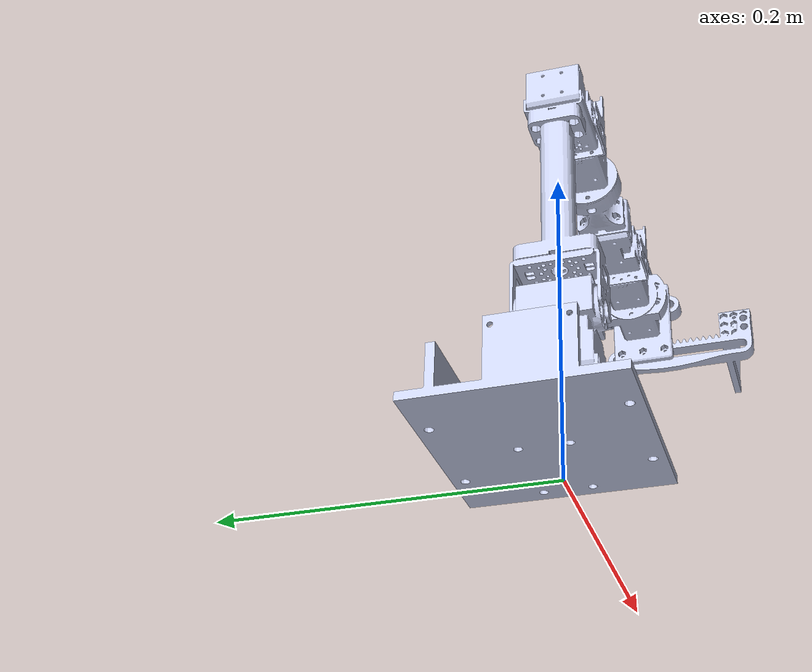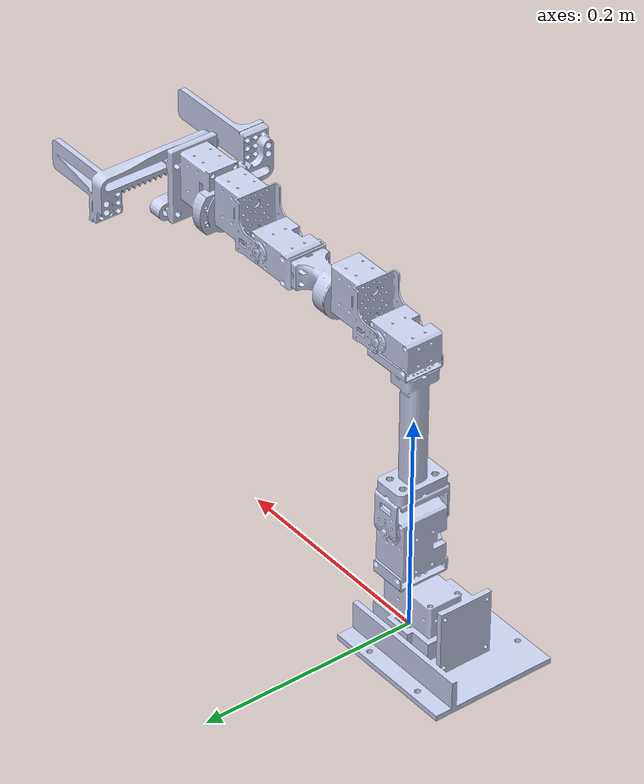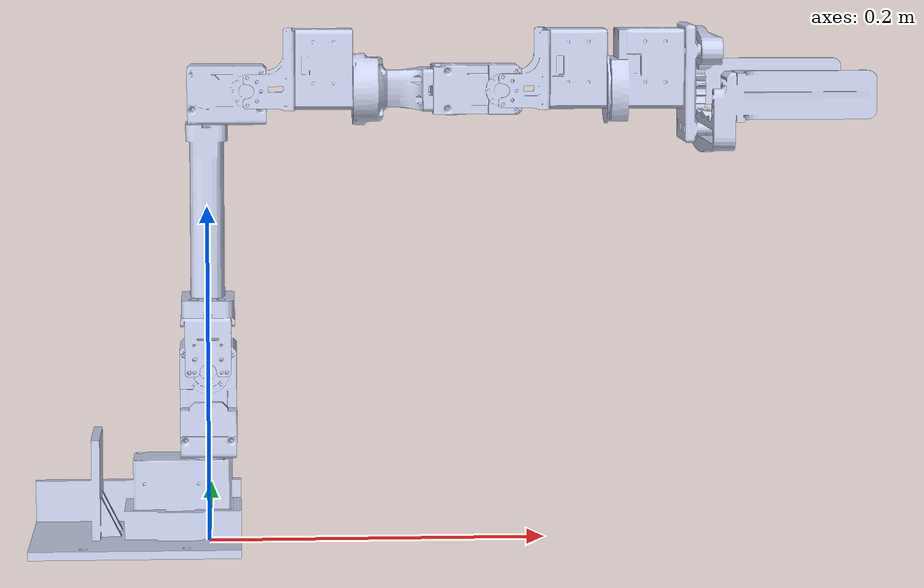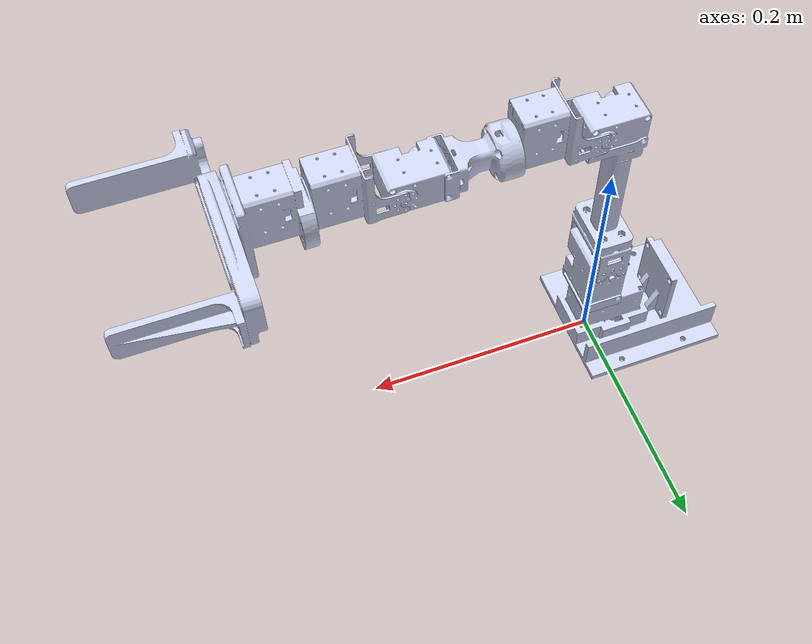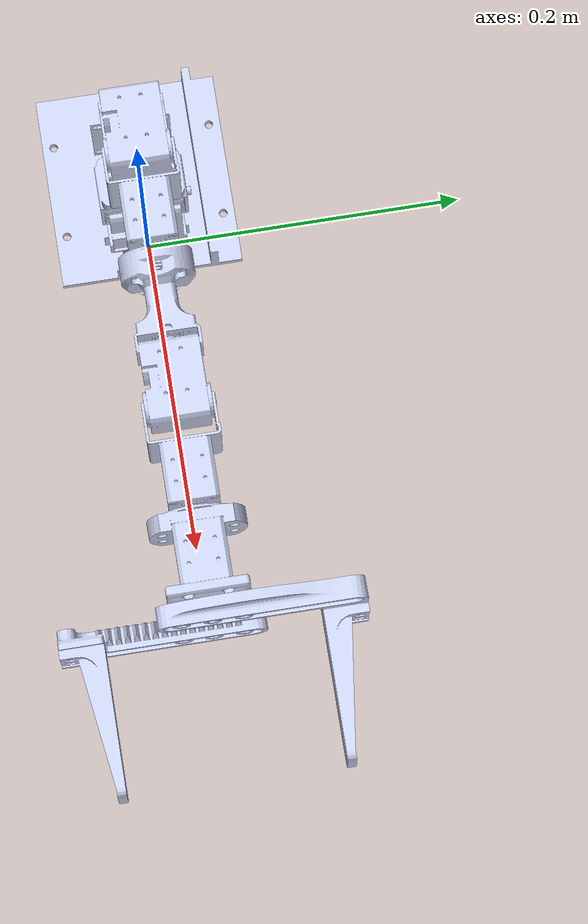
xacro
<?xml version="1.0"?>
<robot
  name="sting"
  xmlns:xacro="http://www.ros.org/wiki/xacro">

  <xacro:include filename="$(find sting_description)/urdf/sting.xacro" />

  <xacro:property name="base_link" value="base_link" />

  <link name="base_link" />
  <xacro:sting base_link="${base_link}" />

</robot>

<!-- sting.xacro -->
<robot
  xmlns:xacro="http://www.ros.org/wiki/xacro">
  <xacro:macro name="sting" params="base_link">
    <link
      name="sting_base">
      <inertial>
        <origin
          xyz="-0.0306847245973906 0.00297469188423153 0.0179502559896504"
          rpy="0 0 0" />
        <mass
          value="0.208424947541378" />
        <inertia
          ixx="0.000170859916484587"
          ixy="7.66647075115288E-06"
          ixz="-1.87765482676613E-05"
          iyy="0.000257551852637342"
          iyz="2.79158713422585E-07"
          izz="0.000322531498669573" />
      </inertial>
      <visual>
        <origin
          xyz="0 0 0"
          rpy="0 0 0" />
        <geometry>
          <mesh
            filename="package://sting_description/meshes/base_link.STL" />
        </geometry>
        <material
          name="">
          <color
            rgba="0.792156862745098 0.819607843137255 0.933333333333333 1" />
        </material>
      </visual>
      <collision>
        <origin
          xyz="0 0 0"
          rpy="0 0 0" />
        <geometry>
          <mesh
            filename="package://sting_description/meshes/base_link_collision.STL" />
        </geometry>
      </collision>
    </link>
    <joint name="sting_base_joint"
      type="fixed">
      <origin
        xyz="0 0 0"
        rpy="0 0 0" />
      <parent
        link="${base_link}" />
      <child
        link="sting_base" />
    </joint>
    <link
      name="shoulder">
      <inertial>
        <origin
          xyz="-2.83701451220253E-10 0.000650440813576972 0.0296441737600373"
          rpy="0 0 0" />
        <mass
          value="0.0886507468374865" />
        <inertia
          ixx="4.39599938957944E-05"
          ixy="-4.10056983368094E-13"
          ixz="-2.26716263020998E-14"
          iyy="3.64657646135674E-05"
          iyz="-2.49947341733224E-07"
          izz="2.31909272995461E-05" />
      </inertial>
      <visual>
        <origin
          xyz="0 0 0"
          rpy="0 0 0" />
        <geometry>
          <mesh
            filename="package://sting_description/meshes/shoulder.STL" />
        </geometry>
        <material
          name="">
          <color
            rgba="0.792156862745098 0.819607843137255 0.933333333333333 1" />
        </material>
      </visual>
      <collision>
        <origin
          xyz="0 0 0"
          rpy="0 0 0" />
        <geometry>
          <mesh
            filename="package://sting_description/meshes/shoulder_collision.STL" />
        </geometry>
      </collision>
    </link>
    <joint
      name="shoulder_lateral"
      type="revolute">
      <origin
        xyz="0 0 0.0586"
        rpy="0 0 5.5511E-17" />
      <parent
        link="sting_base" />
      <child
        link="shoulder" />
      <axis
        xyz="0 0 1" />
      <limit
        lower="-2.0944"
        upper="2.0944"
        effort="1.5"
        velocity="0.2" />
    </joint>
    <link
      name="upper_arm">
      <inertial>
        <origin
          xyz="0.0059374683190056 0.00025826476222137 0.116477208759359"
          rpy="0 0 0" />
        <mass
          value="0.0964875205570864" />
        <inertia
          ixx="0.000293392741763401"
          ixy="-1.65504722836251E-07"
          ixz="-2.68030403800667E-05"
          iyy="0.000296714836558997"
          iyz="-1.19420368429977E-06"
          izz="2.64654966840106E-05" />
      </inertial>
      <visual>
        <origin
          xyz="0 0 0"
          rpy="0 0 0" />
        <geometry>
          <mesh
            filename="package://sting_description/meshes/upper_arm.STL" />
        </geometry>
        <material
          name="">
          <color
            rgba="0.792156862745098 0.819607843137255 0.933333333333333 1" />
        </material>
      </visual>
      <collision>
        <origin
          xyz="0 0 0"
          rpy="0 0 0" />
        <geometry>
          <mesh
            filename="package://sting_description/meshes/upper_arm_collision.STL" />
        </geometry>
      </collision>
    </link>
    <joint
      name="sholder_vertical"
      type="revolute">
      <origin
        xyz="0 0 0.0462"
        rpy="0 0 -5.5511E-17" />
      <parent
        link="shoulder" />
      <child
        link="upper_arm" />
      <axis
        xyz="0 1 0" />
      <limit
        lower="-1.5708"
        upper="1.5708"
        effort="1.5"
        velocity="0.2" />
    </joint>
    <link
      name="lower_arm_back">
      <inertial>
        <origin
          xyz="0.0434959254307221 -1.14636806471113E-09 0.0114920313938176"
          rpy="0 0 0" />
        <mass
          value="0.0483834887231438" />
        <inertia
          ixx="1.2677814519069E-05"
          ixy="-4.44863666688638E-12"
          ixz="-2.71995442627541E-07"
          iyy="1.54367273768713E-05"
          iyz="4.54047154489777E-13"
          izz="1.06356238691095E-05" />
      </inertial>
      <visual>
        <origin
          xyz="0 0 0"
          rpy="0 0 0" />
        <geometry>
          <mesh
            filename="package://sting_description/meshes/lower_arm_back.STL" />
        </geometry>
        <material
          name="">
          <color
            rgba="0.792156862745098 0.819607843137255 0.933333333333333 1" />
        </material>
      </visual>
      <collision>
        <origin
          xyz="0 0 0"
          rpy="0 0 0" />
        <geometry>
          <mesh
            filename="package://sting_description/meshes/lower_arm_back_collision.STL" />
        </geometry>
      </collision>
    </link>
    <joint
      name="elbow"
      type="revolute">
      <origin
        xyz="0.024 0 0.1644"
        rpy="4.4738E-30 1.0077E-14 3.4001E-16" />
      <parent
        link="upper_arm" />
      <child
        link="lower_arm_back" />
      <axis
        xyz="0 1 0" />
      <limit
        lower="-1.5708"
        upper="1.5708"
        effort="1.5"
        velocity="0.2" />
    </joint>
    <link
      name="lower_arm_middle">
      <inertial>
        <origin
          xyz="0.214841381906226 0.000357131119188845 0.0845979817439144"
          rpy="0 0 0" />
        <mass
          value="0.0697643525972458" />
        <inertia
          ixx="1.21947606720726E-05"
          ixy="-5.2751996332917E-07"
          ixz="3.60127078450824E-08"
          iyy="6.94122378614307E-05"
          iyz="5.39987996519929E-10"
          izz="7.13194771252659E-05" />
      </inertial>
      <visual>
        <origin
          xyz="0 0 0"
          rpy="0 0 0" />
        <geometry>
          <mesh
            filename="package://sting_description/meshes/lower_arm_middle.STL" />
        </geometry>
        <material
          name="">
          <color
            rgba="0.792156862745098 0.819607843137255 0.933333333333333 1" />
        </material>
      </visual>
      <collision>
        <origin
          xyz="0 0 0"
          rpy="0 0 0" />
        <geometry>
          <mesh
            filename="package://sting_description/meshes/lower_arm_middle_collision.STL" />
        </geometry>
      </collision>
    </link>
    <joint
      name="lower_arm_yaw"
      type="revolute">
      <origin
        xyz="0.062 0 0"
        rpy="-5.86153888555981E-30 -2.50569359413717E-14 1.41610079671577E-16" />
      />
      <parent
        link="lower_arm_back" />
      <child
        link="lower_arm_middle" />
      <axis
        xyz="1 0 0" />
      <limit
        lower="-3.14159"
        upper="3.14159"
        effort="1.5"
        velocity="0.2" />
    </joint>
    <link
      name="lower_arm_front">
      <inertial>
        <origin
          xyz="0.0434959254307224 -1.14636688162972E-09 0.0114920313938176"
          rpy="0 0 0" />
        <mass
          value="0.0483834887231438" />
        <inertia
          ixx="1.2677814519069E-05"
          ixy="-4.44863665996012E-12"
          ixz="-2.71995442627538E-07"
          iyy="1.54367273768713E-05"
          iyz="4.54047171613963E-13"
          izz="1.06356238691095E-05" />
      </inertial>
      <visual>
        <origin
          xyz="0 0 0"
          rpy="0 0 0" />
        <geometry>
          <mesh
            filename="package://sting_description/meshes/lower_arm_front.STL" />
        </geometry>
        <material
          name="">
          <color
            rgba="0.792156862745098 0.819607843137255 0.933333333333333 1" />
        </material>
      </visual>
      <collision>
        <origin
          xyz="0 0 0"
          rpy="0 0 0" />
        <geometry>
          <mesh
            filename="package://sting_description/meshes/lower_arm_front_collision.STL" />
        </geometry>
      </collision>
    </link>
    <joint
      name="lower_arm_vertical"
      type="revolute">
      <origin
        xyz="0.0875000000000006 0 0"
        rpy="-2.31296463463572E-15 2.26630175445237E-14 1.94005809150057E-15" />
      <parent
        link="lower_arm_middle" />
      <child
        link="lower_arm_front" />
      <axis
        xyz="0 1 0" />
      <limit
        lower="-1.75"
        upper="2.0"
        effort="1.5"
        velocity="0.2" />
    </joint>
    <link name = "gripper_frame"/>
    <joint
      name="gripper_yaw"
      type="revolute">
      <origin
        xyz="0.0620000000000001 0 0"
        rpy="2.31296463463576E-15 -2.26630175445237E-14 -1.94005809150062E-15" />
      <parent
        link="lower_arm_front" />
      <child
        link="gripper_frame" />
      <axis
        xyz="1 0 0" />
      <limit
        lower="-3.14159"
        upper="3.14159"
        effort="1.5"
        velocity="0.2" />
    </joint>
    <link
      name="gripper">
      <inertial>
        <origin
          xyz="0.194704951724816 -2.17324802095215E-08 0.12068685472718"
          rpy="0 0 0" />
        <mass
          value="0.0886007401728508" />
        <inertia
          ixx="3.41353282847447E-05"
          ixy="-6.3636069010898E-11"
          ixz="7.59006185089717E-07"
          iyy="5.03382529039198E-05"
          iyz="2.31748941043985E-11"
          izz="3.8064016603647E-05" />
      </inertial>
      <visual>
        <origin
          xyz="0 0 0"
          rpy="0 0 0" />
        <geometry>
          <mesh
            filename="package://sting_description/meshes/gripper.STL" />
        </geometry>
        <material
          name="">
          <color
            rgba="0.792156862745098 0.819607843137255 0.933333333333333 1" />
        </material>
      </visual>
      <collision>
        <origin
          xyz="0 0 0"
          rpy="0 0 0" />
        <geometry>
          <mesh
            filename="package://sting_description/meshes/gripper_collision.STL" />
        </geometry>
      </collision>
    </link>
    <joint name="gripper_joint"
      type="fixed">
      <origin
        xyz="0 0 0"
        rpy="0 0 0" />
      <parent
        link="gripper_frame" />
      <child
        link="gripper" />
    </joint>
    <link
      name="left_finger">
      <inertial>
        <origin
          xyz="0.0208098801732191 0.0499696696707152 0.0100306977135814"
          rpy="0 0 0" />
        <mass
          value="0.0335122683871604" />
        <inertia
          ixx="3.47056370294739E-05"
          ixy="-9.08295917628388E-06"
          ixz="6.80086286395204E-06"
          iyy="3.1260293364006E-05"
          iyz="7.57592794813548E-06"
          izz="5.35698354765624E-05" />
      </inertial>
      <visual>
        <origin
          xyz="0 0 0"
          rpy="0 0 0" />
        <geometry>
          <mesh
            filename="package://sting_description/meshes/left_finger.STL" />
        </geometry>
        <material
          name="">
          <color
            rgba="0.792156862745098 0.819607843137255 0.933333333333333 1" />
        </material>
      </visual>
      <collision>
        <origin
          xyz="0 0 0"
          rpy="0 0 0" />
        <geometry>
          <mesh
            filename="package://sting_description/meshes/left_finger_collision.STL" />
        </geometry>
      </collision>
    </link>
    <joint
      name="left_finger_joint"
      type="prismatic">
      <origin
        xyz="0.0585000000000001 0 0"
        rpy="-4.78783679369601E-16 1.52572064754592E-14 -1.41610079671578E-16" />
      <parent
        link="gripper" />
      <child
        link="left_finger" />
      <axis
        xyz="0 -1 0" />
      <limit
        lower="0"
        upper="0.06"
        effort="1"
        velocity="0.2" />
    </joint>
    <link
      name="right_finger">
      <inertial>
        <origin
          xyz="0.02081 -0.04997 -0.010231"
          rpy="0 0 0" />
        <mass
          value="0.033512" />
        <inertia
          ixx="3.4706E-05"
          ixy="9.083E-06"
          ixz="-6.8009E-06"
          iyy="3.126E-05"
          iyz="7.5759E-06"
          izz="5.357E-05" />
      </inertial>
      <visual>
        <origin
          xyz="0 0 0"
          rpy="0 0 0" />
        <geometry>
          <mesh
            filename="package://sting_description/meshes/right_finger.STL" />
        </geometry>
        <material
          name="">
          <color
            rgba="0.79216 0.81961 0.93333 1" />
        </material>
      </visual>
      <collision>
        <origin
          xyz="0 0 0"
          rpy="0 0 0" />
        <geometry>
          <mesh
            filename="package://sting_description/meshes/right_finger_collision.STL" />
        </geometry>
      </collision>
    </link>
    <joint
      name="right_finger_joint"
      type="prismatic">
      <origin
        xyz="0.0585000000000001 0 0"
        rpy="-4.78783679369601E-16 1.52572064754592E-14 -1.41610079671578E-16" />
      <parent
        link="gripper" />
      <child
        link="right_finger" />
      <axis
        xyz="0 1 0" />
      <mimic
        joint="left_finger_joint"
        multiplier="1" />
      <limit
        lower="0"
        upper="0.06"
        effort="1"
        velocity="0.2" />
    </joint>
  </xacro:macro>
</robot>
